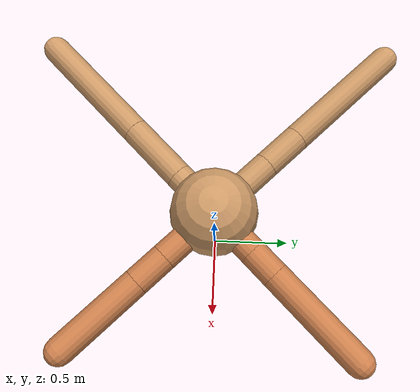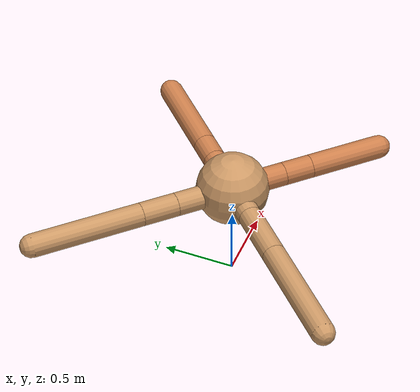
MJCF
<mujoco model="ant">
  <compiler angle="degree" coordinate="local" inertiafromgeom="true" />
  <option integrator="RK4" timestep="0.01" />
  <custom>
    <numeric data="0.0 0.0 0.55 1.0 0.0 0.0 0.0 0.0 1.0 0.0 -1.0 0.0 -1.0 0.0 1.0" name="init_qpos" />
  </custom>
  <default>
    <joint armature="1" damping="1" limited="true" />
    <geom conaffinity="0" condim="3" density="5.0" friction="1.5 0.1 0.1" margin="0.01" rgba="0.8 0.6 0.4 1" />
  </default>
  <worldbody>
    <body name="torso" pos="0 0 0.75">
      <geom name="torso_geom" pos="0 0 0" size="0.25" type="sphere" />

      <body name="front_left_leg" pos="0 0 0">
        <geom fromto="0.0 0.0 0.0 0.2209606288545902 0.2209606288545902 0.0" name="aux_1_geom" size="0.08" type="capsule" rgba=".8 .5 .3 1" />
        <body name="aux_1" pos="0.2209606288545902 0.2209606288545902 0.0">
          <joint axis="0 0 1" name="hip_1" pos="0.0 0.0 0.0" range="-40 40" type="hinge" />
          <geom fromto="0.0 0.0 0.0 0.12197063913839307 0.12197063913839307 0.0" name="left_leg_geom" size="0.08" type="capsule" rgba=".8 .5 .3 1" />
          <body pos="0.12197063913839307 0.12197063913839307 0.0" name="front_left_foot">
            <joint axis="-1 1 0" name="ankle_1" pos="0.0 0.0 0.0" range="30 100" type="hinge" />
            <geom fromto="0.0 0.0 0.0 0.43875632171387036 0.43875632171387036 0.0" name="left_ankle_geom" size="0.08" type="capsule" rgba=".8 .5 .3 1" />
          </body>
        </body>
      </body>
      <body name="front_right_leg" pos="0 0 0">
        <geom fromto="0.0 0.0 0.0 -0.29052171862568915 0.29052171862568915 0.0" name="aux_2_geom" size="0.08" type="capsule" />
        <body name="aux_2" pos="-0.29052171862568915 0.29052171862568915 0.0">
          <joint axis="0 0 1" name="hip_2" pos="0.0 0.0 0.0" range="-40 40" type="hinge" />
          <geom fromto="0.0 0.0 0.0 -0.17547533427770293 0.17547533427770293 0.0" name="right_leg_geom" size="0.08" type="capsule" />
          <body pos="-0.17547533427770293 0.17547533427770293 0.0" name="front_right_foot">
            <joint axis="1 1 0" name="ankle_2" pos="0.0 0.0 0.0" range="-100 -30" type="hinge" />
            <geom fromto="0.0 0.0 0.0 -0.5442634036475463 0.5442634036475463 0.0" name="right_ankle_geom" size="0.08" type="capsule" />
          </body>
        </body>
      </body>
      <body name="left_back_leg" pos="0 0 0">
        <geom fromto="0.0 0.0 0.0 -0.20808648497987867 -0.20808648497987867 0.0" name="aux_3_geom" size="0.08" type="capsule" />
        <body name="aux_3" pos="-0.20808648497987867 -0.20808648497987867 0.0">
          <joint axis="0 0 1" name="hip_3" pos="0.0 0.0 0.0" range="-40 40" type="hinge" />
          <geom fromto="0.0 0.0 0.0 -0.27310601484322533 -0.27310601484322533 0.0" name="back_leg_geom" size="0.08" type="capsule" />
          <body pos="-0.27310601484322533 -0.27310601484322533 0.0" name="left_back_foot">
            <joint axis="-1 1 0" name="ankle_3" pos="0.0 0.0 0.0" range="-100 -30" type="hinge" />
            <geom fromto="0.0 0.0 0.0 -0.5317733926315938 -0.5317733926315938 0.0" name="third_ankle_geom" size="0.08" type="capsule" />
          </body>
        </body>
      </body>
      <body name="right_back_leg" pos="0 0 0">
        <geom fromto="0.0 0.0 0.0 0.26474539950521264 -0.26474539950521264 0.0" name="aux_4_geom" size="0.08" type="capsule" rgba=".8 .5 .3 1" />
        <body name="aux_4" pos="0.26474539950521264 -0.26474539950521264 0.0">
          <joint axis="0 0 1" name="hip_4" pos="0.0 0.0 0.0" range="-40 40" type="hinge" />
          <geom fromto="0.0 0.0 0.0 0.1405912061213148 -0.1405912061213148 0.0" name="rightback_leg_geom" size="0.08" type="capsule" rgba=".8 .5 .3 1" />
          <body pos="0.1405912061213148 -0.1405912061213148 0.0" name="right_back_foot">
            <joint axis="1 1 0" name="ankle_4" pos="0.0 0.0 0.0" range="30 100" type="hinge" />
            <geom fromto="0.0 0.0 0.0 0.369313237906299 -0.369313237906299 0.0" name="fourth_ankle_geom" size="0.08" type="capsule" rgba=".8 .5 .3 1" />
          </body>
        </body>
      </body>
    </body>
  </worldbody>
  <actuator>
    <motor ctrllimited="true" ctrlrange="-1.0 1.0" joint="hip_4" gear="150" />
    <motor ctrllimited="true" ctrlrange="-1.0 1.0" joint="ankle_4" gear="150" />
    <motor ctrllimited="true" ctrlrange="-1.0 1.0" joint="hip_1" gear="150" />
    <motor ctrllimited="true" ctrlrange="-1.0 1.0" joint="ankle_1" gear="150" />
    <motor ctrllimited="true" ctrlrange="-1.0 1.0" joint="hip_2" gear="150" />
    <motor ctrllimited="true" ctrlrange="-1.0 1.0" joint="ankle_2" gear="150" />
    <motor ctrllimited="true" ctrlrange="-1.0 1.0" joint="hip_3" gear="150" />
    <motor ctrllimited="true" ctrlrange="-1.0 1.0" joint="ankle_3" gear="150" />
  </actuator>
</mujoco>
